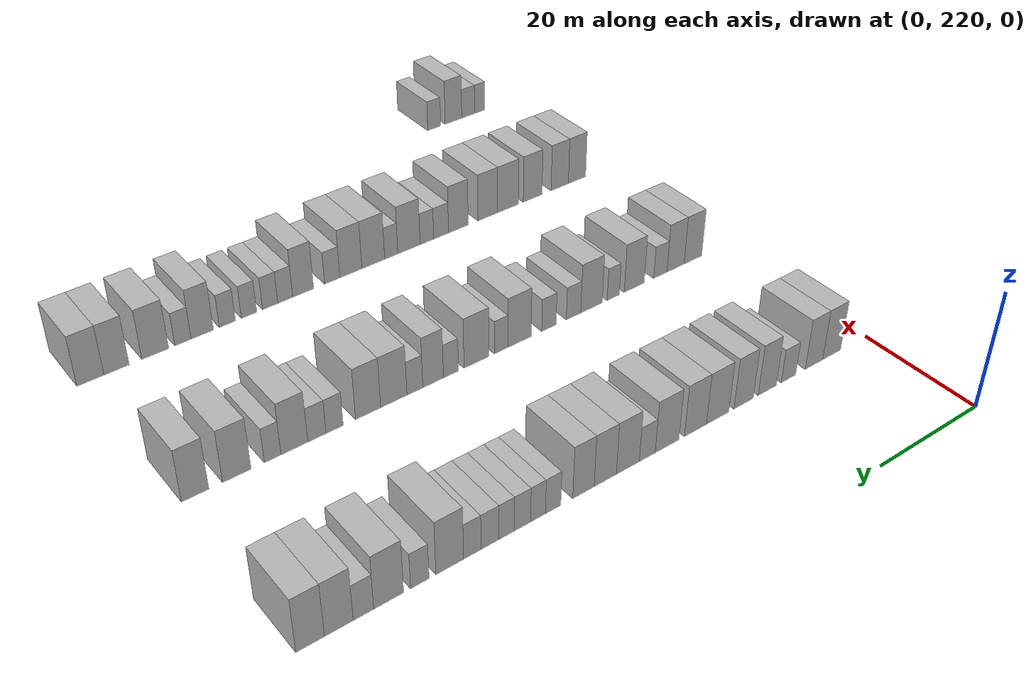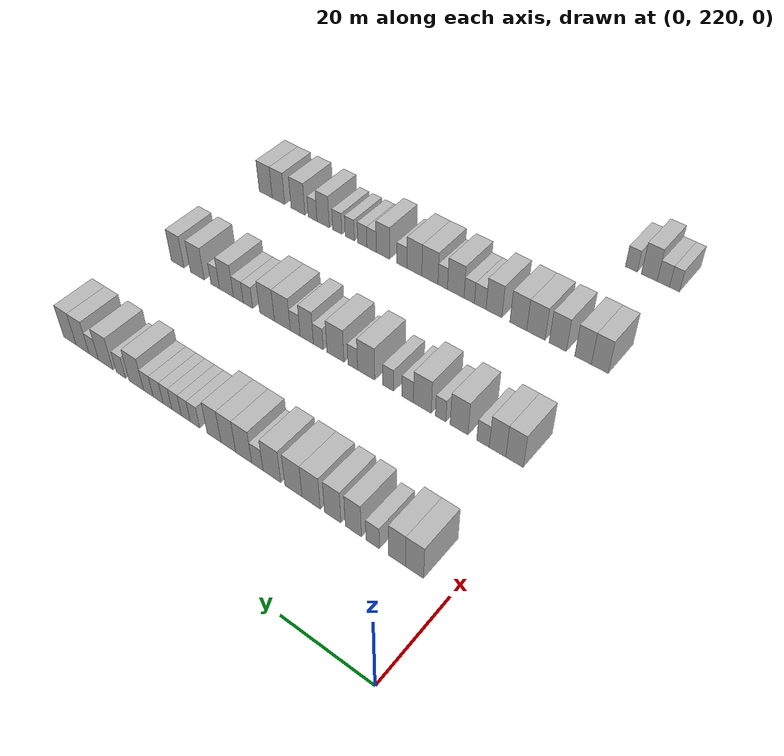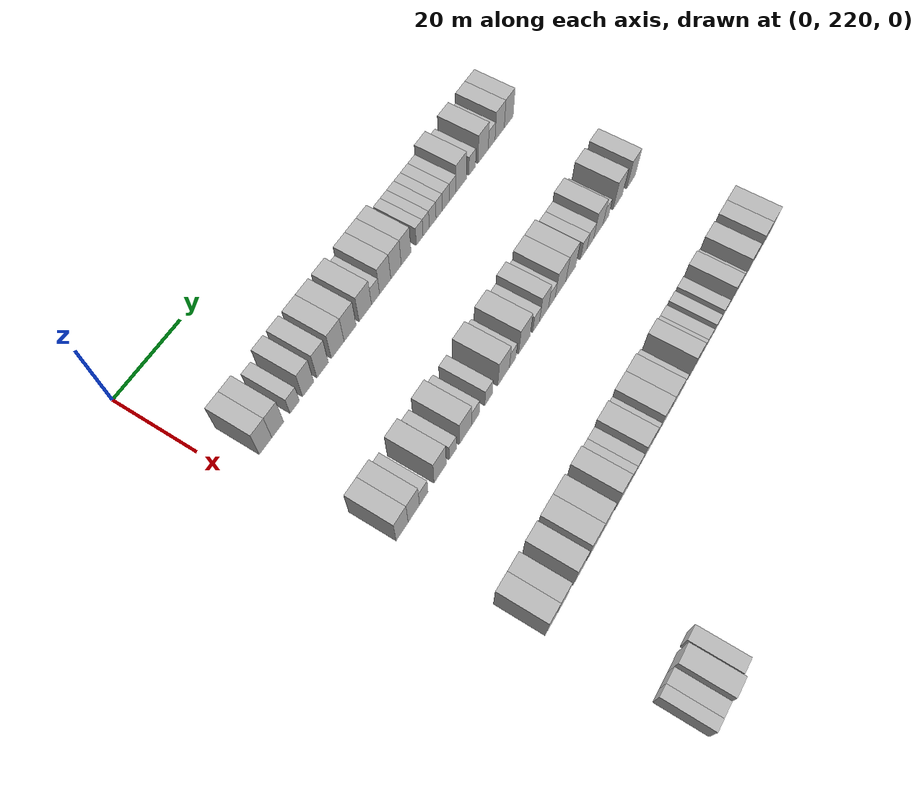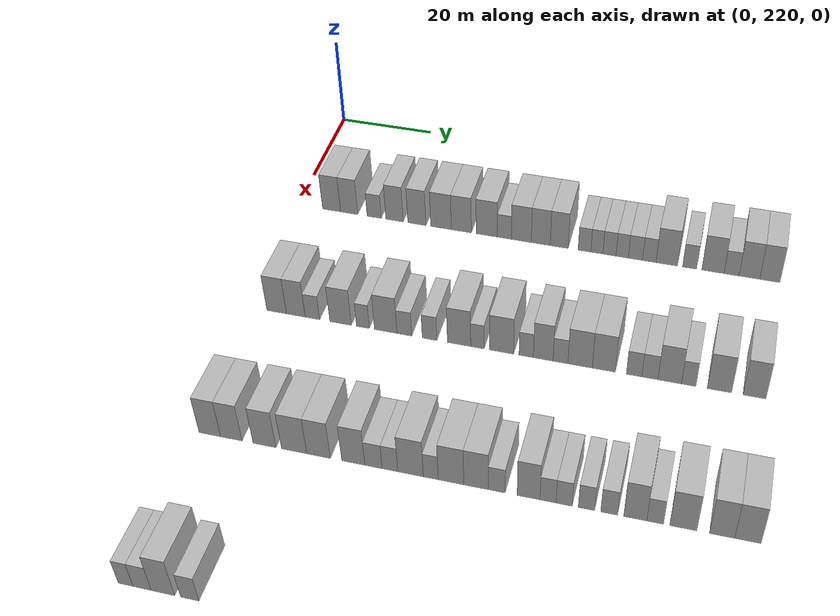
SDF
<sdf version="1.6">
 <world name="default">
  <model name="building_165">
   <static>1</static>
   <pose>25.0000 227.4370 0 0.000000 0.000000 0.000000</pose>
   <link name="link">
    <pose>0 0 4.50 0 0 0</pose>
    <collision name="collision"><geometry><box><size>10.0000 3.8455 9.0000</size></box></geometry></collision>
    <visual name="visual">
     <cast_shadows>0</cast_shadows>
     <geometry><box><size>10.0000 3.8455 9.0000</size></box></geometry>
     <material>
      <script>
       <uri>model://HANNAS_wall/materials/scripts</uri>
       <uri>model://HANNAS_wall/materials/textures</uri>
       <name>vrc/HANNAS_wall</name>
      </script>
     </material>
    </visual>
   </link>
  </model>
  <model name="building_166">
   <static>1</static>
   <pose>25.0000 231.2000 0 0.000000 0.000000 0.000000</pose>
   <link name="link">
    <pose>0 0 4.50 0 0 0</pose>
    <collision name="collision"><geometry><box><size>10.0000 3.6806 9.0000</size></box></geometry></collision>
    <visual name="visual">
     <cast_shadows>0</cast_shadows>
     <geometry><box><size>10.0000 3.6806 9.0000</size></box></geometry>
     <material>
      <script>
       <uri>model://HANNAS_wall/materials/scripts</uri>
       <uri>model://HANNAS_wall/materials/textures</uri>
       <name>vrc/HANNAS_wall</name>
      </script>
     </material>
    </visual>
   </link>
  </model>
  <model name="building_167">
   <static>1</static>
   <pose>25.0000 236.5311 0 0.000000 0.000000 0.000000</pose>
   <link name="link">
    <pose>0 0 3.00 0 0 0</pose>
    <collision name="collision"><geometry><box><size>10.0000 2.9816 6.0000</size></box></geometry></collision>
    <visual name="visual">
     <cast_shadows>0</cast_shadows>
     <geometry><box><size>10.0000 2.9816 6.0000</size></box></geometry>
     <material>
      <script>
       <uri>model://HANNAS_wall/materials/scripts</uri>
       <uri>model://HANNAS_wall/materials/textures</uri>
       <name>vrc/HANNAS_wall</name>
      </script>
     </material>
    </visual>
   </link>
  </model>
  <model name="building_168">
   <static>1</static>
   <pose>25.0000 240.8434 0 0.000000 0.000000 0.000000</pose>
   <link name="link">
    <pose>0 0 4.50 0 0 0</pose>
    <collision name="collision"><geometry><box><size>10.0000 3.6431 9.0000</size></box></geometry></collision>
    <visual name="visual">
     <cast_shadows>0</cast_shadows>
     <geometry><box><size>10.0000 3.6431 9.0000</size></box></geometry>
     <material>
      <script>
       <uri>model://HANNAS_wall/materials/scripts</uri>
       <uri>model://HANNAS_wall/materials/textures</uri>
       <name>vrc/HANNAS_wall</name>
      </script>
     </material>
    </visual>
   </link>
  </model>
  <model name="building_169">
   <static>1</static>
   <pose>25.0000 245.5628 0 0.000000 0.000000 0.000000</pose>
   <link name="link">
    <pose>0 0 4.50 0 0 0</pose>
    <collision name="collision"><geometry><box><size>10.0000 3.7955 9.0000</size></box></geometry></collision>
    <visual name="visual">
     <cast_shadows>0</cast_shadows>
     <geometry><box><size>10.0000 3.7955 9.0000</size></box></geometry>
     <material>
      <script>
       <uri>model://HANNAS_wall/materials/scripts</uri>
       <uri>model://HANNAS_wall/materials/textures</uri>
       <name>vrc/HANNAS_wall</name>
      </script>
     </material>
    </visual>
   </link>
  </model>
  <model name="building_170">
   <static>1</static>
   <pose>25.0000 250.6056 0 0.000000 0.000000 0.000000</pose>
   <link name="link">
    <pose>0 0 4.50 0 0 0</pose>
    <collision name="collision"><geometry><box><size>10.0000 4.2902 9.0000</size></box></geometry></collision>
    <visual name="visual">
     <cast_shadows>0</cast_shadows>
     <geometry><box><size>10.0000 4.2902 9.0000</size></box></geometry>
     <material>
      <script>
       <uri>model://HANNAS_wall/materials/scripts</uri>
       <uri>model://HANNAS_wall/materials/textures</uri>
       <name>vrc/HANNAS_wall</name>
      </script>
     </material>
    </visual>
   </link>
  </model>
  <model name="building_171">
   <static>1</static>
   <pose>25.0000 254.8267 0 0.000000 0.000000 0.000000</pose>
   <link name="link">
    <pose>0 0 4.50 0 0 0</pose>
    <collision name="collision"><geometry><box><size>10.0000 4.1519 9.0000</size></box></geometry></collision>
    <visual name="visual">
     <cast_shadows>0</cast_shadows>
     <geometry><box><size>10.0000 4.1519 9.0000</size></box></geometry>
     <material>
      <script>
       <uri>model://HANNAS_wall/materials/scripts</uri>
       <uri>model://HANNAS_wall/materials/textures</uri>
       <name>vrc/HANNAS_wall</name>
      </script>
     </material>
    </visual>
   </link>
  </model>
  <model name="building_172">
   <static>1</static>
   <pose>25.0000 260.0834 0 0.000000 0.000000 0.000000</pose>
   <link name="link">
    <pose>0 0 4.50 0 0 0</pose>
    <collision name="collision"><geometry><box><size>10.0000 4.3616 9.0000</size></box></geometry></collision>
    <visual name="visual">
     <cast_shadows>0</cast_shadows>
     <geometry><box><size>10.0000 4.3616 9.0000</size></box></geometry>
     <material>
      <script>
       <uri>model://HANNAS_wall/materials/scripts</uri>
       <uri>model://HANNAS_wall/materials/textures</uri>
       <name>vrc/HANNAS_wall</name>
      </script>
     </material>
    </visual>
   </link>
  </model>
  <model name="building_173">
   <static>1</static>
   <pose>25.0000 263.6945 0 0.000000 0.000000 0.000000</pose>
   <link name="link">
    <pose>0 0 3.00 0 0 0</pose>
    <collision name="collision"><geometry><box><size>10.0000 2.8604 6.0000</size></box></geometry></collision>
    <visual name="visual">
     <cast_shadows>0</cast_shadows>
     <geometry><box><size>10.0000 2.8604 6.0000</size></box></geometry>
     <material>
      <script>
       <uri>model://HANNAS_wall/materials/scripts</uri>
       <uri>model://HANNAS_wall/materials/textures</uri>
       <name>vrc/HANNAS_wall</name>
      </script>
     </material>
    </visual>
   </link>
  </model>
  <model name="building_174">
   <static>1</static>
   <pose>25.0000 267.1509 0 0.000000 0.000000 0.000000</pose>
   <link name="link">
    <pose>0 0 4.50 0 0 0</pose>
    <collision name="collision"><geometry><box><size>10.0000 4.0524 9.0000</size></box></geometry></collision>
    <visual name="visual">
     <cast_shadows>0</cast_shadows>
     <geometry><box><size>10.0000 4.0524 9.0000</size></box></geometry>
     <material>
      <script>
       <uri>model://HANNAS_wall/materials/scripts</uri>
       <uri>model://HANNAS_wall/materials/textures</uri>
       <name>vrc/HANNAS_wall</name>
      </script>
     </material>
    </visual>
   </link>
  </model>
  <model name="building_175">
   <static>1</static>
   <pose>25.0000 271.0927 0 0.000000 0.000000 0.000000</pose>
   <link name="link">
    <pose>0 0 4.50 0 0 0</pose>
    <collision name="collision"><geometry><box><size>10.0000 3.8312 9.0000</size></box></geometry></collision>
    <visual name="visual">
     <cast_shadows>0</cast_shadows>
     <geometry><box><size>10.0000 3.8312 9.0000</size></box></geometry>
     <material>
      <script>
       <uri>model://HANNAS_wall/materials/scripts</uri>
       <uri>model://HANNAS_wall/materials/textures</uri>
       <name>vrc/HANNAS_wall</name>
      </script>
     </material>
    </visual>
   </link>
  </model>
  <model name="building_176">
   <static>1</static>
   <pose>25.0000 274.8189 0 0.000000 0.000000 0.000000</pose>
   <link name="link">
    <pose>0 0 4.50 0 0 0</pose>
    <collision name="collision"><geometry><box><size>10.0000 3.6212 9.0000</size></box></geometry></collision>
    <visual name="visual">
     <cast_shadows>0</cast_shadows>
     <geometry><box><size>10.0000 3.6212 9.0000</size></box></geometry>
     <material>
      <script>
       <uri>model://HANNAS_wall/materials/scripts</uri>
       <uri>model://HANNAS_wall/materials/textures</uri>
       <name>vrc/HANNAS_wall</name>
      </script>
     </material>
    </visual>
   </link>
  </model>
  <model name="building_177">
   <static>1</static>
   <pose>25.0000 279.8929 0 0.000000 0.000000 0.000000</pose>
   <link name="link">
    <pose>0 0 3.00 0 0 0</pose>
    <collision name="collision"><geometry><box><size>10.0000 2.5268 6.0000</size></box></geometry></collision>
    <visual name="visual">
     <cast_shadows>0</cast_shadows>
     <geometry><box><size>10.0000 2.5268 6.0000</size></box></geometry>
     <material>
      <script>
       <uri>model://HANNAS_wall/materials/scripts</uri>
       <uri>model://HANNAS_wall/materials/textures</uri>
       <name>vrc/HANNAS_wall</name>
      </script>
     </material>
    </visual>
   </link>
  </model>
  <model name="building_178">
   <static>1</static>
   <pose>25.0000 282.3582 0 0.000000 0.000000 0.000000</pose>
   <link name="link">
    <pose>0 0 3.00 0 0 0</pose>
    <collision name="collision"><geometry><box><size>10.0000 2.4037 6.0000</size></box></geometry></collision>
    <visual name="visual">
     <cast_shadows>0</cast_shadows>
     <geometry><box><size>10.0000 2.4037 6.0000</size></box></geometry>
     <material>
      <script>
       <uri>model://HANNAS_wall/materials/scripts</uri>
       <uri>model://HANNAS_wall/materials/textures</uri>
       <name>vrc/HANNAS_wall</name>
      </script>
     </material>
    </visual>
   </link>
  </model>
  <model name="building_179">
   <static>1</static>
   <pose>25.0000 284.8630 0 0.000000 0.000000 0.000000</pose>
   <link name="link">
    <pose>0 0 3.00 0 0 0</pose>
    <collision name="collision"><geometry><box><size>10.0000 2.6060 6.0000</size></box></geometry></collision>
    <visual name="visual">
     <cast_shadows>0</cast_shadows>
     <geometry><box><size>10.0000 2.6060 6.0000</size></box></geometry>
     <material>
      <script>
       <uri>model://HANNAS_wall/materials/scripts</uri>
       <uri>model://HANNAS_wall/materials/textures</uri>
       <name>vrc/HANNAS_wall</name>
      </script>
     </material>
    </visual>
   </link>
  </model>
  <model name="building_180">
   <static>1</static>
   <pose>25.0000 287.3835 0 0.000000 0.000000 0.000000</pose>
   <link name="link">
    <pose>0 0 3.00 0 0 0</pose>
    <collision name="collision"><geometry><box><size>10.0000 2.4350 6.0000</size></box></geometry></collision>
    <visual name="visual">
     <cast_shadows>0</cast_shadows>
     <geometry><box><size>10.0000 2.4350 6.0000</size></box></geometry>
     <material>
      <script>
       <uri>model://HANNAS_wall/materials/scripts</uri>
       <uri>model://HANNAS_wall/materials/textures</uri>
       <name>vrc/HANNAS_wall</name>
      </script>
     </material>
    </visual>
   </link>
  </model>
  <model name="building_181">
   <static>1</static>
   <pose>25.0000 290.0002 0 0.000000 0.000000 0.000000</pose>
   <link name="link">
    <pose>0 0 3.00 0 0 0</pose>
    <collision name="collision"><geometry><box><size>10.0000 2.7984 6.0000</size></box></geometry></collision>
    <visual name="visual">
     <cast_shadows>0</cast_shadows>
     <geometry><box><size>10.0000 2.7984 6.0000</size></box></geometry>
     <material>
      <script>
       <uri>model://HANNAS_wall/materials/scripts</uri>
       <uri>model://HANNAS_wall/materials/textures</uri>
       <name>vrc/HANNAS_wall</name>
      </script>
     </material>
    </visual>
   </link>
  </model>
  <model name="building_182">
   <static>1</static>
   <pose>25.0000 292.7369 0 0.000000 0.000000 0.000000</pose>
   <link name="link">
    <pose>0 0 3.00 0 0 0</pose>
    <collision name="collision"><geometry><box><size>10.0000 2.6749 6.0000</size></box></geometry></collision>
    <visual name="visual">
     <cast_shadows>0</cast_shadows>
     <geometry><box><size>10.0000 2.6749 6.0000</size></box></geometry>
     <material>
      <script>
       <uri>model://HANNAS_wall/materials/scripts</uri>
       <uri>model://HANNAS_wall/materials/textures</uri>
       <name>vrc/HANNAS_wall</name>
      </script>
     </material>
    </visual>
   </link>
  </model>
  <model name="building_183">
   <static>1</static>
   <pose>25.0000 296.1657 0 0.000000 0.000000 0.000000</pose>
   <link name="link">
    <pose>0 0 4.50 0 0 0</pose>
    <collision name="collision"><geometry><box><size>10.0000 4.1828 9.0000</size></box></geometry></collision>
    <visual name="visual">
     <cast_shadows>0</cast_shadows>
     <geometry><box><size>10.0000 4.1828 9.0000</size></box></geometry>
     <material>
      <script>
       <uri>model://HANNAS_wall/materials/scripts</uri>
       <uri>model://HANNAS_wall/materials/textures</uri>
       <name>vrc/HANNAS_wall</name>
      </script>
     </material>
    </visual>
   </link>
  </model>
  <model name="building_184">
   <static>1</static>
   <pose>25.0000 300.6173 0 0.000000 0.000000 0.000000</pose>
   <link name="link">
    <pose>0 0 3.00 0 0 0</pose>
    <collision name="collision"><geometry><box><size>10.0000 2.7203 6.0000</size></box></geometry></collision>
    <visual name="visual">
     <cast_shadows>0</cast_shadows>
     <geometry><box><size>10.0000 2.7203 6.0000</size></box></geometry>
     <material>
      <script>
       <uri>model://HANNAS_wall/materials/scripts</uri>
       <uri>model://HANNAS_wall/materials/textures</uri>
       <name>vrc/HANNAS_wall</name>
      </script>
     </material>
    </visual>
   </link>
  </model>
  <model name="building_185">
   <static>1</static>
   <pose>25.0000 305.1178 0 0.000000 0.000000 0.000000</pose>
   <link name="link">
    <pose>0 0 4.50 0 0 0</pose>
    <collision name="collision"><geometry><box><size>10.0000 4.2808 9.0000</size></box></geometry></collision>
    <visual name="visual">
     <cast_shadows>0</cast_shadows>
     <geometry><box><size>10.0000 4.2808 9.0000</size></box></geometry>
     <material>
      <script>
       <uri>model://HANNAS_wall/materials/scripts</uri>
       <uri>model://HANNAS_wall/materials/textures</uri>
       <name>vrc/HANNAS_wall</name>
      </script>
     </material>
    </visual>
   </link>
  </model>
  <model name="building_186">
   <static>1</static>
   <pose>25.0000 308.6935 0 0.000000 0.000000 0.000000</pose>
   <link name="link">
    <pose>0 0 3.00 0 0 0</pose>
    <collision name="collision"><geometry><box><size>10.0000 2.8706 6.0000</size></box></geometry></collision>
    <visual name="visual">
     <cast_shadows>0</cast_shadows>
     <geometry><box><size>10.0000 2.8706 6.0000</size></box></geometry>
     <material>
      <script>
       <uri>model://HANNAS_wall/materials/scripts</uri>
       <uri>model://HANNAS_wall/materials/textures</uri>
       <name>vrc/HANNAS_wall</name>
      </script>
     </material>
    </visual>
   </link>
  </model>
  <model name="building_187">
   <static>1</static>
   <pose>25.0000 312.1012 0 0.000000 0.000000 0.000000</pose>
   <link name="link">
    <pose>0 0 4.50 0 0 0</pose>
    <collision name="collision"><geometry><box><size>10.0000 3.9448 9.0000</size></box></geometry></collision>
    <visual name="visual">
     <cast_shadows>0</cast_shadows>
     <geometry><box><size>10.0000 3.9448 9.0000</size></box></geometry>
     <material>
      <script>
       <uri>model://HANNAS_wall/materials/scripts</uri>
       <uri>model://HANNAS_wall/materials/textures</uri>
       <name>vrc/HANNAS_wall</name>
      </script>
     </material>
    </visual>
   </link>
  </model>
  <model name="building_188">
   <static>1</static>
   <pose>25.0000 316.0018 0 0.000000 0.000000 0.000000</pose>
   <link name="link">
    <pose>0 0 4.50 0 0 0</pose>
    <collision name="collision"><geometry><box><size>10.0000 3.8564 9.0000</size></box></geometry></collision>
    <visual name="visual">
     <cast_shadows>0</cast_shadows>
     <geometry><box><size>10.0000 3.8564 9.0000</size></box></geometry>
     <material>
      <script>
       <uri>model://HANNAS_wall/materials/scripts</uri>
       <uri>model://HANNAS_wall/materials/textures</uri>
       <name>vrc/HANNAS_wall</name>
      </script>
     </material>
    </visual>
   </link>
  </model>
  <model name="building_404">
   <static>1</static>
   <pose>55.0000 226.9983 0 0.000000 0.000000 0.000000</pose>
   <link name="link">
    <pose>0 0 4.50 0 0 0</pose>
    <collision name="collision"><geometry><box><size>10.0000 3.8726 9.0000</size></box></geometry></collision>
    <visual name="visual">
     <cast_shadows>0</cast_shadows>
     <geometry><box><size>10.0000 3.8726 9.0000</size></box></geometry>
     <material>
      <script>
       <uri>model://HANNAS_wall/materials/scripts</uri>
       <uri>model://HANNAS_wall/materials/textures</uri>
       <name>vrc/HANNAS_wall</name>
      </script>
     </material>
    </visual>
   </link>
  </model>
  <model name="building_405">
   <static>1</static>
   <pose>55.0000 230.7908 0 0.000000 0.000000 0.000000</pose>
   <link name="link">
    <pose>0 0 4.50 0 0 0</pose>
    <collision name="collision"><geometry><box><size>10.0000 3.7123 9.0000</size></box></geometry></collision>
    <visual name="visual">
     <cast_shadows>0</cast_shadows>
     <geometry><box><size>10.0000 3.7123 9.0000</size></box></geometry>
     <material>
      <script>
       <uri>model://HANNAS_wall/materials/scripts</uri>
       <uri>model://HANNAS_wall/materials/textures</uri>
       <name>vrc/HANNAS_wall</name>
      </script>
     </material>
    </visual>
   </link>
  </model>
  <model name="building_406">
   <static>1</static>
   <pose>55.0000 234.0624 0 0.000000 0.000000 0.000000</pose>
   <link name="link">
    <pose>0 0 3.00 0 0 0</pose>
    <collision name="collision"><geometry><box><size>10.0000 2.8311 6.0000</size></box></geometry></collision>
    <visual name="visual">
     <cast_shadows>0</cast_shadows>
     <geometry><box><size>10.0000 2.8311 6.0000</size></box></geometry>
     <material>
      <script>
       <uri>model://HANNAS_wall/materials/scripts</uri>
       <uri>model://HANNAS_wall/materials/textures</uri>
       <name>vrc/HANNAS_wall</name>
      </script>
     </material>
    </visual>
   </link>
  </model>
  <model name="building_407">
   <static>1</static>
   <pose>55.0000 239.5647 0 0.000000 0.000000 0.000000</pose>
   <link name="link">
    <pose>0 0 4.50 0 0 0</pose>
    <collision name="collision"><geometry><box><size>10.0000 4.1735 9.0000</size></box></geometry></collision>
    <visual name="visual">
     <cast_shadows>0</cast_shadows>
     <geometry><box><size>10.0000 4.1735 9.0000</size></box></geometry>
     <material>
      <script>
       <uri>model://HANNAS_wall/materials/scripts</uri>
       <uri>model://HANNAS_wall/materials/textures</uri>
       <name>vrc/HANNAS_wall</name>
      </script>
     </material>
    </visual>
   </link>
  </model>
  <model name="building_408">
   <static>1</static>
   <pose>55.0000 243.8929 0 0.000000 0.000000 0.000000</pose>
   <link name="link">
    <pose>0 0 3.00 0 0 0</pose>
    <collision name="collision"><geometry><box><size>10.0000 2.4830 6.0000</size></box></geometry></collision>
    <visual name="visual">
     <cast_shadows>0</cast_shadows>
     <geometry><box><size>10.0000 2.4830 6.0000</size></box></geometry>
     <material>
      <script>
       <uri>model://HANNAS_wall/materials/scripts</uri>
       <uri>model://HANNAS_wall/materials/textures</uri>
       <name>vrc/HANNAS_wall</name>
      </script>
     </material>
    </visual>
   </link>
  </model>
  <model name="building_409">
   <static>1</static>
   <pose>55.0000 248.2896 0 0.000000 0.000000 0.000000</pose>
   <link name="link">
    <pose>0 0 4.50 0 0 0</pose>
    <collision name="collision"><geometry><box><size>10.0000 4.3103 9.0000</size></box></geometry></collision>
    <visual name="visual">
     <cast_shadows>0</cast_shadows>
     <geometry><box><size>10.0000 4.3103 9.0000</size></box></geometry>
     <material>
      <script>
       <uri>model://HANNAS_wall/materials/scripts</uri>
       <uri>model://HANNAS_wall/materials/textures</uri>
       <name>vrc/HANNAS_wall</name>
      </script>
     </material>
    </visual>
   </link>
  </model>
  <model name="building_410">
   <static>1</static>
   <pose>55.0000 251.8631 0 0.000000 0.000000 0.000000</pose>
   <link name="link">
    <pose>0 0 3.00 0 0 0</pose>
    <collision name="collision"><geometry><box><size>10.0000 2.8367 6.0000</size></box></geometry></collision>
    <visual name="visual">
     <cast_shadows>0</cast_shadows>
     <geometry><box><size>10.0000 2.8367 6.0000</size></box></geometry>
     <material>
      <script>
       <uri>model://HANNAS_wall/materials/scripts</uri>
       <uri>model://HANNAS_wall/materials/textures</uri>
       <name>vrc/HANNAS_wall</name>
      </script>
     </material>
    </visual>
   </link>
  </model>
  <model name="building_411">
   <static>1</static>
   <pose>55.0000 256.6655 0 0.000000 0.000000 0.000000</pose>
   <link name="link">
    <pose>0 0 3.00 0 0 0</pose>
    <collision name="collision"><geometry><box><size>10.0000 2.7683 6.0000</size></box></geometry></collision>
    <visual name="visual">
     <cast_shadows>0</cast_shadows>
     <geometry><box><size>10.0000 2.7683 6.0000</size></box></geometry>
     <material>
      <script>
       <uri>model://HANNAS_wall/materials/scripts</uri>
       <uri>model://HANNAS_wall/materials/textures</uri>
       <name>vrc/HANNAS_wall</name>
      </script>
     </material>
    </visual>
   </link>
  </model>
  <model name="building_412">
   <static>1</static>
   <pose>55.0000 262.2347 0 0.000000 0.000000 0.000000</pose>
   <link name="link">
    <pose>0 0 4.50 0 0 0</pose>
    <collision name="collision"><geometry><box><size>10.0000 4.3701 9.0000</size></box></geometry></collision>
    <visual name="visual">
     <cast_shadows>0</cast_shadows>
     <geometry><box><size>10.0000 4.3701 9.0000</size></box></geometry>
     <material>
      <script>
       <uri>model://HANNAS_wall/materials/scripts</uri>
       <uri>model://HANNAS_wall/materials/textures</uri>
       <name>vrc/HANNAS_wall</name>
      </script>
     </material>
    </visual>
   </link>
  </model>
  <model name="building_413">
   <static>1</static>
   <pose>55.0000 265.6770 0 0.000000 0.000000 0.000000</pose>
   <link name="link">
    <pose>0 0 3.00 0 0 0</pose>
    <collision name="collision"><geometry><box><size>10.0000 2.5143 6.0000</size></box></geometry></collision>
    <visual name="visual">
     <cast_shadows>0</cast_shadows>
     <geometry><box><size>10.0000 2.5143 6.0000</size></box></geometry>
     <material>
      <script>
       <uri>model://HANNAS_wall/materials/scripts</uri>
       <uri>model://HANNAS_wall/materials/textures</uri>
       <name>vrc/HANNAS_wall</name>
      </script>
     </material>
    </visual>
   </link>
  </model>
  <model name="building_414">
   <static>1</static>
   <pose>55.0000 270.1775 0 0.000000 0.000000 0.000000</pose>
   <link name="link">
    <pose>0 0 4.50 0 0 0</pose>
    <collision name="collision"><geometry><box><size>10.0000 4.4868 9.0000</size></box></geometry></collision>
    <visual name="visual">
     <cast_shadows>0</cast_shadows>
     <geometry><box><size>10.0000 4.4868 9.0000</size></box></geometry>
     <material>
      <script>
       <uri>model://HANNAS_wall/materials/scripts</uri>
       <uri>model://HANNAS_wall/materials/textures</uri>
       <name>vrc/HANNAS_wall</name>
      </script>
     </material>
    </visual>
   </link>
  </model>
  <model name="building_415">
   <static>1</static>
   <pose>55.0000 274.7426 0 0.000000 0.000000 0.000000</pose>
   <link name="link">
    <pose>0 0 3.00 0 0 0</pose>
    <collision name="collision"><geometry><box><size>10.0000 2.6433 6.0000</size></box></geometry></collision>
    <visual name="visual">
     <cast_shadows>0</cast_shadows>
     <geometry><box><size>10.0000 2.6433 6.0000</size></box></geometry>
     <material>
      <script>
       <uri>model://HANNAS_wall/materials/scripts</uri>
       <uri>model://HANNAS_wall/materials/textures</uri>
       <name>vrc/HANNAS_wall</name>
      </script>
     </material>
    </visual>
   </link>
  </model>
  <model name="building_416">
   <static>1</static>
   <pose>55.0000 277.8679 0 0.000000 0.000000 0.000000</pose>
   <link name="link">
    <pose>0 0 4.50 0 0 0</pose>
    <collision name="collision"><geometry><box><size>10.0000 3.6072 9.0000</size></box></geometry></collision>
    <visual name="visual">
     <cast_shadows>0</cast_shadows>
     <geometry><box><size>10.0000 3.6072 9.0000</size></box></geometry>
     <material>
      <script>
       <uri>model://HANNAS_wall/materials/scripts</uri>
       <uri>model://HANNAS_wall/materials/textures</uri>
       <name>vrc/HANNAS_wall</name>
      </script>
     </material>
    </visual>
   </link>
  </model>
  <model name="building_417">
   <static>1</static>
   <pose>55.0000 281.0274 0 0.000000 0.000000 0.000000</pose>
   <link name="link">
    <pose>0 0 3.00 0 0 0</pose>
    <collision name="collision"><geometry><box><size>10.0000 2.7119 6.0000</size></box></geometry></collision>
    <visual name="visual">
     <cast_shadows>0</cast_shadows>
     <geometry><box><size>10.0000 2.7119 6.0000</size></box></geometry>
     <material>
      <script>
       <uri>model://HANNAS_wall/materials/scripts</uri>
       <uri>model://HANNAS_wall/materials/textures</uri>
       <name>vrc/HANNAS_wall</name>
      </script>
     </material>
    </visual>
   </link>
  </model>
  <model name="building_418">
   <static>1</static>
   <pose>55.0000 284.5988 0 0.000000 0.000000 0.000000</pose>
   <link name="link">
    <pose>0 0 4.50 0 0 0</pose>
    <collision name="collision"><geometry><box><size>10.0000 4.4309 9.0000</size></box></geometry></collision>
    <visual name="visual">
     <cast_shadows>0</cast_shadows>
     <geometry><box><size>10.0000 4.4309 9.0000</size></box></geometry>
     <material>
      <script>
       <uri>model://HANNAS_wall/materials/scripts</uri>
       <uri>model://HANNAS_wall/materials/textures</uri>
       <name>vrc/HANNAS_wall</name>
      </script>
     </material>
    </visual>
   </link>
  </model>
  <model name="building_419">
   <static>1</static>
   <pose>55.0000 288.8880 0 0.000000 0.000000 0.000000</pose>
   <link name="link">
    <pose>0 0 4.50 0 0 0</pose>
    <collision name="collision"><geometry><box><size>10.0000 4.1475 9.0000</size></box></geometry></collision>
    <visual name="visual">
     <cast_shadows>0</cast_shadows>
     <geometry><box><size>10.0000 4.1475 9.0000</size></box></geometry>
     <material>
      <script>
       <uri>model://HANNAS_wall/materials/scripts</uri>
       <uri>model://HANNAS_wall/materials/textures</uri>
       <name>vrc/HANNAS_wall</name>
      </script>
     </material>
    </visual>
   </link>
  </model>
  <model name="building_420">
   <static>1</static>
   <pose>55.0000 294.3403 0 0.000000 0.000000 0.000000</pose>
   <link name="link">
    <pose>0 0 3.00 0 0 0</pose>
    <collision name="collision"><geometry><box><size>10.0000 2.7571 6.0000</size></box></geometry></collision>
    <visual name="visual">
     <cast_shadows>0</cast_shadows>
     <geometry><box><size>10.0000 2.7571 6.0000</size></box></geometry>
     <material>
      <script>
       <uri>model://HANNAS_wall/materials/scripts</uri>
       <uri>model://HANNAS_wall/materials/textures</uri>
       <name>vrc/HANNAS_wall</name>
      </script>
     </material>
    </visual>
   </link>
  </model>
  <model name="building_421">
   <static>1</static>
   <pose>55.0000 297.1636 0 0.000000 0.000000 0.000000</pose>
   <link name="link">
    <pose>0 0 3.00 0 0 0</pose>
    <collision name="collision"><geometry><box><size>10.0000 2.8896 6.0000</size></box></geometry></collision>
    <visual name="visual">
     <cast_shadows>0</cast_shadows>
     <geometry><box><size>10.0000 2.8896 6.0000</size></box></geometry>
     <material>
      <script>
       <uri>model://HANNAS_wall/materials/scripts</uri>
       <uri>model://HANNAS_wall/materials/textures</uri>
       <name>vrc/HANNAS_wall</name>
      </script>
     </material>
    </visual>
   </link>
  </model>
  <model name="building_422">
   <static>1</static>
   <pose>55.0000 300.6883 0 0.000000 0.000000 0.000000</pose>
   <link name="link">
    <pose>0 0 4.50 0 0 0</pose>
    <collision name="collision"><geometry><box><size>10.0000 4.1597 9.0000</size></box></geometry></collision>
    <visual name="visual">
     <cast_shadows>0</cast_shadows>
     <geometry><box><size>10.0000 4.1597 9.0000</size></box></geometry>
     <material>
      <script>
       <uri>model://HANNAS_wall/materials/scripts</uri>
       <uri>model://HANNAS_wall/materials/textures</uri>
       <name>vrc/HANNAS_wall</name>
      </script>
     </material>
    </visual>
   </link>
  </model>
  <model name="building_423">
   <static>1</static>
   <pose>55.0000 304.0374 0 0.000000 0.000000 0.000000</pose>
   <link name="link">
    <pose>0 0 3.00 0 0 0</pose>
    <collision name="collision"><geometry><box><size>10.0000 2.5385 6.0000</size></box></geometry></collision>
    <visual name="visual">
     <cast_shadows>0</cast_shadows>
     <geometry><box><size>10.0000 2.5385 6.0000</size></box></geometry>
     <material>
      <script>
       <uri>model://HANNAS_wall/materials/scripts</uri>
       <uri>model://HANNAS_wall/materials/textures</uri>
       <name>vrc/HANNAS_wall</name>
      </script>
     </material>
    </visual>
   </link>
  </model>
  <model name="building_424">
   <static>1</static>
   <pose>55.0000 309.4275 0 0.000000 0.000000 0.000000</pose>
   <link name="link">
    <pose>0 0 4.50 0 0 0</pose>
    <collision name="collision"><geometry><box><size>10.0000 4.2418 9.0000</size></box></geometry></collision>
    <visual name="visual">
     <cast_shadows>0</cast_shadows>
     <geometry><box><size>10.0000 4.2418 9.0000</size></box></geometry>
     <material>
      <script>
       <uri>model://HANNAS_wall/materials/scripts</uri>
       <uri>model://HANNAS_wall/materials/textures</uri>
       <name>vrc/HANNAS_wall</name>
      </script>
     </material>
    </visual>
   </link>
  </model>
  <model name="building_425">
   <static>1</static>
   <pose>55.0000 315.5246 0 0.000000 0.000000 0.000000</pose>
   <link name="link">
    <pose>0 0 4.50 0 0 0</pose>
    <collision name="collision"><geometry><box><size>10.0000 3.9524 9.0000</size></box></geometry></collision>
    <visual name="visual">
     <cast_shadows>0</cast_shadows>
     <geometry><box><size>10.0000 3.9524 9.0000</size></box></geometry>
     <material>
      <script>
       <uri>model://HANNAS_wall/materials/scripts</uri>
       <uri>model://HANNAS_wall/materials/textures</uri>
       <name>vrc/HANNAS_wall</name>
      </script>
     </material>
    </visual>
   </link>
  </model>
  <model name="building_628">
   <static>1</static>
   <pose>85.0000 226.4498 0 0.000000 0.000000 0.000000</pose>
   <link name="link">
    <pose>0 0 4.50 0 0 0</pose>
    <collision name="collision"><geometry><box><size>10.0000 3.9036 9.0000</size></box></geometry></collision>
    <visual name="visual">
     <cast_shadows>0</cast_shadows>
     <geometry><box><size>10.0000 3.9036 9.0000</size></box></geometry>
     <material>
      <script>
       <uri>model://HANNAS_wall/materials/scripts</uri>
       <uri>model://HANNAS_wall/materials/textures</uri>
       <name>vrc/HANNAS_wall</name>
      </script>
     </material>
    </visual>
   </link>
  </model>
  <model name="building_629">
   <static>1</static>
   <pose>85.0000 230.3287 0 0.000000 0.000000 0.000000</pose>
   <link name="link">
    <pose>0 0 4.50 0 0 0</pose>
    <collision name="collision"><geometry><box><size>10.0000 3.8542 9.0000</size></box></geometry></collision>
    <visual name="visual">
     <cast_shadows>0</cast_shadows>
     <geometry><box><size>10.0000 3.8542 9.0000</size></box></geometry>
     <material>
      <script>
       <uri>model://HANNAS_wall/materials/scripts</uri>
       <uri>model://HANNAS_wall/materials/textures</uri>
       <name>vrc/HANNAS_wall</name>
      </script>
     </material>
    </visual>
   </link>
  </model>
  <model name="building_630">
   <static>1</static>
   <pose>85.0000 236.3032 0 0.000000 0.000000 0.000000</pose>
   <link name="link">
    <pose>0 0 4.50 0 0 0</pose>
    <collision name="collision"><geometry><box><size>10.0000 4.0949 9.0000</size></box></geometry></collision>
    <visual name="visual">
     <cast_shadows>0</cast_shadows>
     <geometry><box><size>10.0000 4.0949 9.0000</size></box></geometry>
     <material>
      <script>
       <uri>model://HANNAS_wall/materials/scripts</uri>
       <uri>model://HANNAS_wall/materials/textures</uri>
       <name>vrc/HANNAS_wall</name>
      </script>
     </material>
    </visual>
   </link>
  </model>
  <model name="building_631">
   <static>1</static>
   <pose>85.0000 241.5825 0 0.000000 0.000000 0.000000</pose>
   <link name="link">
    <pose>0 0 4.50 0 0 0</pose>
    <collision name="collision"><geometry><box><size>10.0000 4.4637 9.0000</size></box></geometry></collision>
    <visual name="visual">
     <cast_shadows>0</cast_shadows>
     <geometry><box><size>10.0000 4.4637 9.0000</size></box></geometry>
     <material>
      <script>
       <uri>model://HANNAS_wall/materials/scripts</uri>
       <uri>model://HANNAS_wall/materials/textures</uri>
       <name>vrc/HANNAS_wall</name>
      </script>
     </material>
    </visual>
   </link>
  </model>
  <model name="building_632">
   <static>1</static>
   <pose>85.0000 245.8919 0 0.000000 0.000000 0.000000</pose>
   <link name="link">
    <pose>0 0 4.50 0 0 0</pose>
    <collision name="collision"><geometry><box><size>10.0000 4.1550 9.0000</size></box></geometry></collision>
    <visual name="visual">
     <cast_shadows>0</cast_shadows>
     <geometry><box><size>10.0000 4.1550 9.0000</size></box></geometry>
     <material>
      <script>
       <uri>model://HANNAS_wall/materials/scripts</uri>
       <uri>model://HANNAS_wall/materials/textures</uri>
       <name>vrc/HANNAS_wall</name>
      </script>
     </material>
    </visual>
   </link>
  </model>
  <model name="building_633">
   <static>1</static>
   <pose>85.0000 251.9793 0 0.000000 0.000000 0.000000</pose>
   <link name="link">
    <pose>0 0 4.50 0 0 0</pose>
    <collision name="collision"><geometry><box><size>10.0000 4.0200 9.0000</size></box></geometry></collision>
    <visual name="visual">
     <cast_shadows>0</cast_shadows>
     <geometry><box><size>10.0000 4.0200 9.0000</size></box></geometry>
     <material>
      <script>
       <uri>model://HANNAS_wall/materials/scripts</uri>
       <uri>model://HANNAS_wall/materials/textures</uri>
       <name>vrc/HANNAS_wall</name>
      </script>
     </material>
    </visual>
   </link>
  </model>
  <model name="building_634">
   <static>1</static>
   <pose>85.0000 255.4817 0 0.000000 0.000000 0.000000</pose>
   <link name="link">
    <pose>0 0 3.00 0 0 0</pose>
    <collision name="collision"><geometry><box><size>10.0000 2.9847 6.0000</size></box></geometry></collision>
    <visual name="visual">
     <cast_shadows>0</cast_shadows>
     <geometry><box><size>10.0000 2.9847 6.0000</size></box></geometry>
     <material>
      <script>
       <uri>model://HANNAS_wall/materials/scripts</uri>
       <uri>model://HANNAS_wall/materials/textures</uri>
       <name>vrc/HANNAS_wall</name>
      </script>
     </material>
    </visual>
   </link>
  </model>
  <model name="building_635">
   <static>1</static>
   <pose>85.0000 258.3266 0 0.000000 0.000000 0.000000</pose>
   <link name="link">
    <pose>0 0 3.00 0 0 0</pose>
    <collision name="collision"><geometry><box><size>10.0000 2.7050 6.0000</size></box></geometry></collision>
    <visual name="visual">
     <cast_shadows>0</cast_shadows>
     <geometry><box><size>10.0000 2.7050 6.0000</size></box></geometry>
     <material>
      <script>
       <uri>model://HANNAS_wall/materials/scripts</uri>
       <uri>model://HANNAS_wall/materials/textures</uri>
       <name>vrc/HANNAS_wall</name>
      </script>
     </material>
    </visual>
   </link>
  </model>
  <model name="building_636">
   <static>1</static>
   <pose>85.0000 261.8639 0 0.000000 0.000000 0.000000</pose>
   <link name="link">
    <pose>0 0 4.50 0 0 0</pose>
    <collision name="collision"><geometry><box><size>10.0000 4.3697 9.0000</size></box></geometry></collision>
    <visual name="visual">
     <cast_shadows>0</cast_shadows>
     <geometry><box><size>10.0000 4.3697 9.0000</size></box></geometry>
     <material>
      <script>
       <uri>model://HANNAS_wall/materials/scripts</uri>
       <uri>model://HANNAS_wall/materials/textures</uri>
       <name>vrc/HANNAS_wall</name>
      </script>
     </material>
    </visual>
   </link>
  </model>
  <model name="building_637">
   <static>1</static>
   <pose>85.0000 265.3122 0 0.000000 0.000000 0.000000</pose>
   <link name="link">
    <pose>0 0 3.00 0 0 0</pose>
    <collision name="collision"><geometry><box><size>10.0000 2.5270 6.0000</size></box></geometry></collision>
    <visual name="visual">
     <cast_shadows>0</cast_shadows>
     <geometry><box><size>10.0000 2.5270 6.0000</size></box></geometry>
     <material>
      <script>
       <uri>model://HANNAS_wall/materials/scripts</uri>
       <uri>model://HANNAS_wall/materials/textures</uri>
       <name>vrc/HANNAS_wall</name>
      </script>
     </material>
    </visual>
   </link>
  </model>
  <model name="building_638">
   <static>1</static>
   <pose>85.0000 268.7443 0 0.000000 0.000000 0.000000</pose>
   <link name="link">
    <pose>0 0 4.50 0 0 0</pose>
    <collision name="collision"><geometry><box><size>10.0000 4.3372 9.0000</size></box></geometry></collision>
    <visual name="visual">
     <cast_shadows>0</cast_shadows>
     <geometry><box><size>10.0000 4.3372 9.0000</size></box></geometry>
     <material>
      <script>
       <uri>model://HANNAS_wall/materials/scripts</uri>
       <uri>model://HANNAS_wall/materials/textures</uri>
       <name>vrc/HANNAS_wall</name>
      </script>
     </material>
    </visual>
   </link>
  </model>
  <model name="building_639">
   <static>1</static>
   <pose>85.0000 272.9704 0 0.000000 0.000000 0.000000</pose>
   <link name="link">
    <pose>0 0 4.50 0 0 0</pose>
    <collision name="collision"><geometry><box><size>10.0000 4.1149 9.0000</size></box></geometry></collision>
    <visual name="visual">
     <cast_shadows>0</cast_shadows>
     <geometry><box><size>10.0000 4.1149 9.0000</size></box></geometry>
     <material>
      <script>
       <uri>model://HANNAS_wall/materials/scripts</uri>
       <uri>model://HANNAS_wall/materials/textures</uri>
       <name>vrc/HANNAS_wall</name>
      </script>
     </material>
    </visual>
   </link>
  </model>
  <model name="building_640">
   <static>1</static>
   <pose>85.0000 276.4338 0 0.000000 0.000000 0.000000</pose>
   <link name="link">
    <pose>0 0 3.00 0 0 0</pose>
    <collision name="collision"><geometry><box><size>10.0000 2.8120 6.0000</size></box></geometry></collision>
    <visual name="visual">
     <cast_shadows>0</cast_shadows>
     <geometry><box><size>10.0000 2.8120 6.0000</size></box></geometry>
     <material>
      <script>
       <uri>model://HANNAS_wall/materials/scripts</uri>
       <uri>model://HANNAS_wall/materials/textures</uri>
       <name>vrc/HANNAS_wall</name>
      </script>
     </material>
    </visual>
   </link>
  </model>
  <model name="building_641">
   <static>1</static>
   <pose>85.0000 281.7197 0 0.000000 0.000000 0.000000</pose>
   <link name="link">
    <pose>0 0 4.50 0 0 0</pose>
    <collision name="collision"><geometry><box><size>10.0000 3.7596 9.0000</size></box></geometry></collision>
    <visual name="visual">
     <cast_shadows>0</cast_shadows>
     <geometry><box><size>10.0000 3.7596 9.0000</size></box></geometry>
     <material>
      <script>
       <uri>model://HANNAS_wall/materials/scripts</uri>
       <uri>model://HANNAS_wall/materials/textures</uri>
       <name>vrc/HANNAS_wall</name>
      </script>
     </material>
    </visual>
   </link>
  </model>
  <model name="building_642">
   <static>1</static>
   <pose>85.0000 284.9208 0 0.000000 0.000000 0.000000</pose>
   <link name="link">
    <pose>0 0 3.00 0 0 0</pose>
    <collision name="collision"><geometry><box><size>10.0000 2.6427 6.0000</size></box></geometry></collision>
    <visual name="visual">
     <cast_shadows>0</cast_shadows>
     <geometry><box><size>10.0000 2.6427 6.0000</size></box></geometry>
     <material>
      <script>
       <uri>model://HANNAS_wall/materials/scripts</uri>
       <uri>model://HANNAS_wall/materials/textures</uri>
       <name>vrc/HANNAS_wall</name>
      </script>
     </material>
    </visual>
   </link>
  </model>
  <model name="building_643">
   <static>1</static>
   <pose>85.0000 287.5709 0 0.000000 0.000000 0.000000</pose>
   <link name="link">
    <pose>0 0 3.00 0 0 0</pose>
    <collision name="collision"><geometry><box><size>10.0000 2.6576 6.0000</size></box></geometry></collision>
    <visual name="visual">
     <cast_shadows>0</cast_shadows>
     <geometry><box><size>10.0000 2.6576 6.0000</size></box></geometry>
     <material>
      <script>
       <uri>model://HANNAS_wall/materials/scripts</uri>
       <uri>model://HANNAS_wall/materials/textures</uri>
       <name>vrc/HANNAS_wall</name>
      </script>
     </material>
    </visual>
   </link>
  </model>
  <model name="building_644">
   <static>1</static>
   <pose>85.0000 291.2250 0 0.000000 0.000000 0.000000</pose>
   <link name="link">
    <pose>0 0 3.00 0 0 0</pose>
    <collision name="collision"><geometry><box><size>10.0000 2.6506 6.0000</size></box></geometry></collision>
    <visual name="visual">
     <cast_shadows>0</cast_shadows>
     <geometry><box><size>10.0000 2.6506 6.0000</size></box></geometry>
     <material>
      <script>
       <uri>model://HANNAS_wall/materials/scripts</uri>
       <uri>model://HANNAS_wall/materials/textures</uri>
       <name>vrc/HANNAS_wall</name>
      </script>
     </material>
    </visual>
   </link>
  </model>
  <model name="building_645">
   <static>1</static>
   <pose>85.0000 294.9094 0 0.000000 0.000000 0.000000</pose>
   <link name="link">
    <pose>0 0 3.00 0 0 0</pose>
    <collision name="collision"><geometry><box><size>10.0000 2.7181 6.0000</size></box></geometry></collision>
    <visual name="visual">
     <cast_shadows>0</cast_shadows>
     <geometry><box><size>10.0000 2.7181 6.0000</size></box></geometry>
     <material>
      <script>
       <uri>model://HANNAS_wall/materials/scripts</uri>
       <uri>model://HANNAS_wall/materials/textures</uri>
       <name>vrc/HANNAS_wall</name>
      </script>
     </material>
    </visual>
   </link>
  </model>
  <model name="building_646">
   <static>1</static>
   <pose>85.0000 299.1199 0 0.000000 0.000000 0.000000</pose>
   <link name="link">
    <pose>0 0 4.50 0 0 0</pose>
    <collision name="collision"><geometry><box><size>10.0000 3.7028 9.0000</size></box></geometry></collision>
    <visual name="visual">
     <cast_shadows>0</cast_shadows>
     <geometry><box><size>10.0000 3.7028 9.0000</size></box></geometry>
     <material>
      <script>
       <uri>model://HANNAS_wall/materials/scripts</uri>
       <uri>model://HANNAS_wall/materials/textures</uri>
       <name>vrc/HANNAS_wall</name>
      </script>
     </material>
    </visual>
   </link>
  </model>
  <model name="building_647">
   <static>1</static>
   <pose>85.0000 302.3047 0 0.000000 0.000000 0.000000</pose>
   <link name="link">
    <pose>0 0 3.00 0 0 0</pose>
    <collision name="collision"><geometry><box><size>10.0000 2.6668 6.0000</size></box></geometry></collision>
    <visual name="visual">
     <cast_shadows>0</cast_shadows>
     <geometry><box><size>10.0000 2.6668 6.0000</size></box></geometry>
     <material>
      <script>
       <uri>model://HANNAS_wall/materials/scripts</uri>
       <uri>model://HANNAS_wall/materials/textures</uri>
       <name>vrc/HANNAS_wall</name>
      </script>
     </material>
    </visual>
   </link>
  </model>
  <model name="building_648">
   <static>1</static>
   <pose>85.0000 306.7820 0 0.000000 0.000000 0.000000</pose>
   <link name="link">
    <pose>0 0 4.50 0 0 0</pose>
    <collision name="collision"><geometry><box><size>10.0000 4.2879 9.0000</size></box></geometry></collision>
    <visual name="visual">
     <cast_shadows>0</cast_shadows>
     <geometry><box><size>10.0000 4.2879 9.0000</size></box></geometry>
     <material>
      <script>
       <uri>model://HANNAS_wall/materials/scripts</uri>
       <uri>model://HANNAS_wall/materials/textures</uri>
       <name>vrc/HANNAS_wall</name>
      </script>
     </material>
    </visual>
   </link>
  </model>
  <model name="building_649">
   <static>1</static>
   <pose>85.0000 312.8888 0 0.000000 0.000000 0.000000</pose>
   <link name="link">
    <pose>0 0 4.50 0 0 0</pose>
    <collision name="collision"><geometry><box><size>10.0000 3.9257 9.0000</size></box></geometry></collision>
    <visual name="visual">
     <cast_shadows>0</cast_shadows>
     <geometry><box><size>10.0000 3.9257 9.0000</size></box></geometry>
     <material>
      <script>
       <uri>model://HANNAS_wall/materials/scripts</uri>
       <uri>model://HANNAS_wall/materials/textures</uri>
       <name>vrc/HANNAS_wall</name>
      </script>
     </material>
    </visual>
   </link>
  </model>
  <model name="building_650">
   <static>1</static>
   <pose>85.0000 316.9154 0 0.000000 0.000000 0.000000</pose>
   <link name="link">
    <pose>0 0 4.50 0 0 0</pose>
    <collision name="collision"><geometry><box><size>10.0000 4.1277 9.0000</size></box></geometry></collision>
    <visual name="visual">
     <cast_shadows>0</cast_shadows>
     <geometry><box><size>10.0000 4.1277 9.0000</size></box></geometry>
     <material>
      <script>
       <uri>model://HANNAS_wall/materials/scripts</uri>
       <uri>model://HANNAS_wall/materials/textures</uri>
       <name>vrc/HANNAS_wall</name>
      </script>
     </material>
    </visual>
   </link>
  </model>
  <model name="building_850">
   <static>1</static>
   <pose>115.0000 225.5707 0 0.000000 0.000000 0.000000</pose>
   <link name="link">
    <pose>0 0 3.00 0 0 0</pose>
    <collision name="collision"><geometry><box><size>10.0000 2.4143 6.0000</size></box></geometry></collision>
    <visual name="visual">
     <cast_shadows>0</cast_shadows>
     <geometry><box><size>10.0000 2.4143 6.0000</size></box></geometry>
     <material>
      <script>
       <uri>model://HANNAS_wall/materials/scripts</uri>
       <uri>model://HANNAS_wall/materials/textures</uri>
       <name>vrc/HANNAS_wall</name>
      </script>
     </material>
    </visual>
   </link>
  </model>
  <model name="building_851">
   <static>1</static>
   <pose>115.0000 228.2759 0 0.000000 0.000000 0.000000</pose>
   <link name="link">
    <pose>0 0 3.00 0 0 0</pose>
    <collision name="collision"><geometry><box><size>10.0000 2.9960 6.0000</size></box></geometry></collision>
    <visual name="visual">
     <cast_shadows>0</cast_shadows>
     <geometry><box><size>10.0000 2.9960 6.0000</size></box></geometry>
     <material>
      <script>
       <uri>model://HANNAS_wall/materials/scripts</uri>
       <uri>model://HANNAS_wall/materials/textures</uri>
       <name>vrc/HANNAS_wall</name>
      </script>
     </material>
    </visual>
   </link>
  </model>
  <model name="building_852">
   <static>1</static>
   <pose>115.0000 231.6820 0 0.000000 0.000000 0.000000</pose>
   <link name="link">
    <pose>0 0 4.50 0 0 0</pose>
    <collision name="collision"><geometry><box><size>10.0000 3.8162 9.0000</size></box></geometry></collision>
    <visual name="visual">
     <cast_shadows>0</cast_shadows>
     <geometry><box><size>10.0000 3.8162 9.0000</size></box></geometry>
     <material>
      <script>
       <uri>model://HANNAS_wall/materials/scripts</uri>
       <uri>model://HANNAS_wall/materials/textures</uri>
       <name>vrc/HANNAS_wall</name>
      </script>
     </material>
    </visual>
   </link>
  </model>
  <model name="building_853">
   <static>1</static>
   <pose>115.0000 236.0585 0 0.000000 0.000000 0.000000</pose>
   <link name="link">
    <pose>0 0 3.00 0 0 0</pose>
    <collision name="collision"><geometry><box><size>10.0000 2.9367 6.0000</size></box></geometry></collision>
    <visual name="visual">
     <cast_shadows>0</cast_shadows>
     <geometry><box><size>10.0000 2.9367 6.0000</size></box></geometry>
     <material>
      <script>
       <uri>model://HANNAS_wall/materials/scripts</uri>
       <uri>model://HANNAS_wall/materials/textures</uri>
       <name>vrc/HANNAS_wall</name>
      </script>
     </material>
    </visual>
   </link>
  </model>
 </world>
</sdf>
